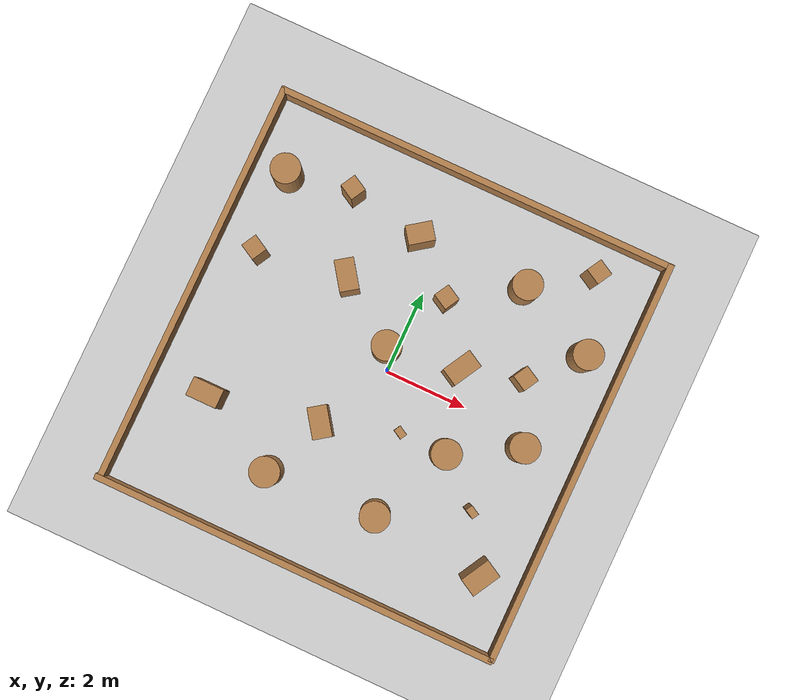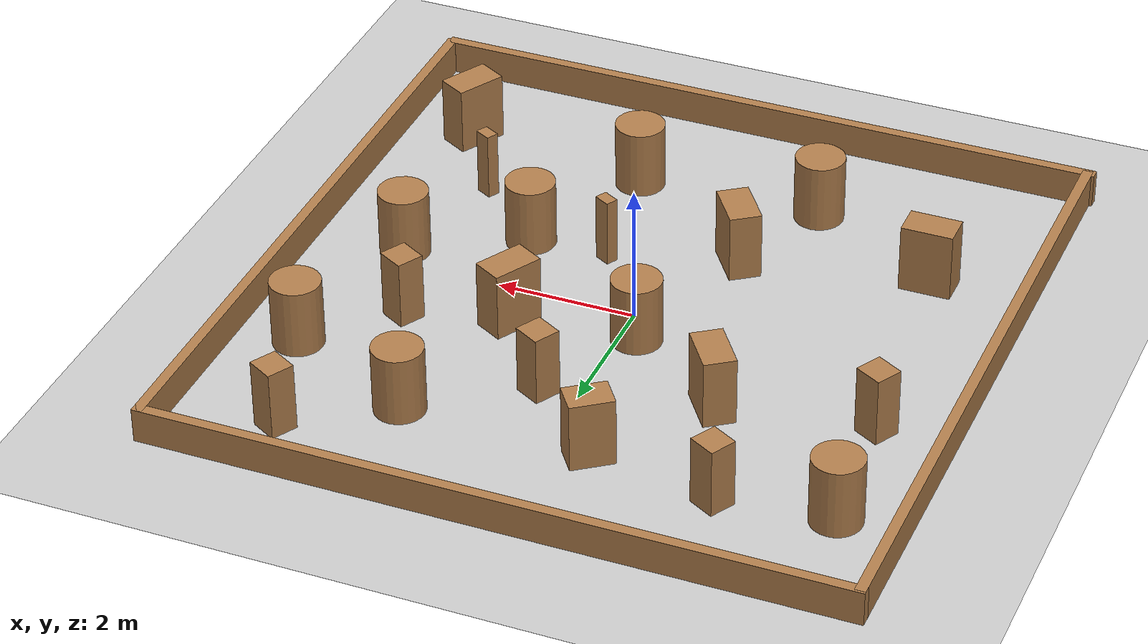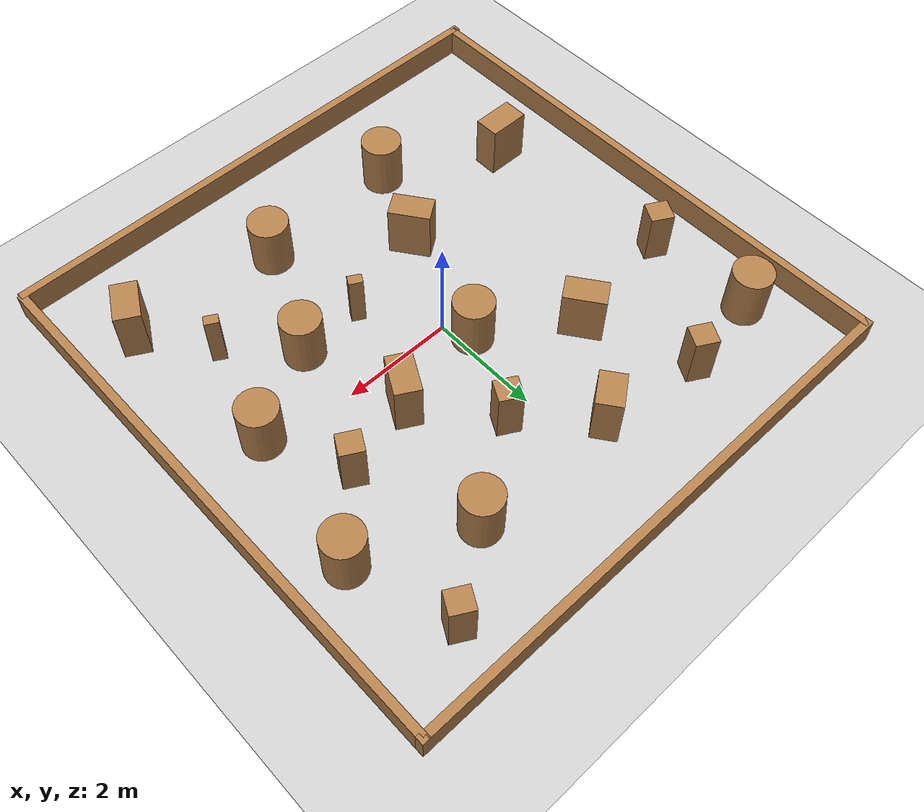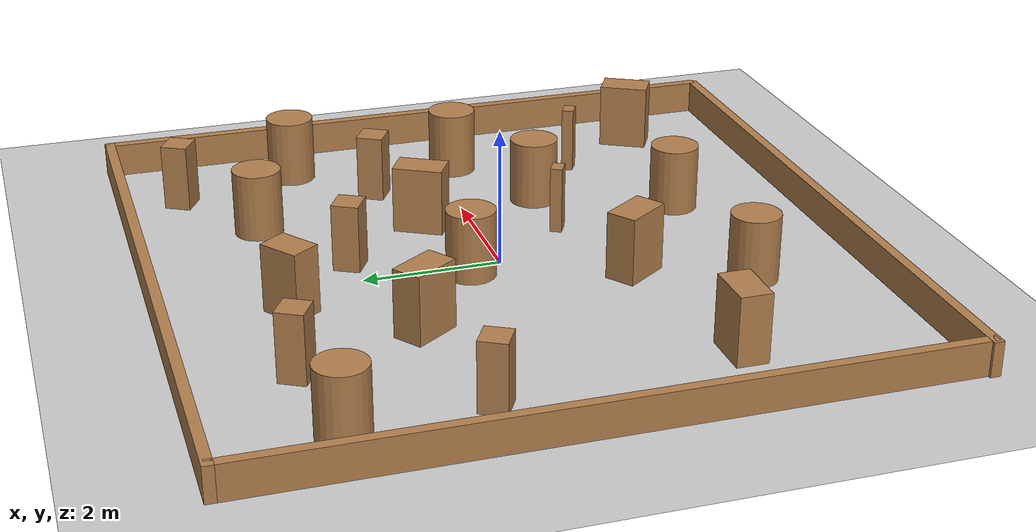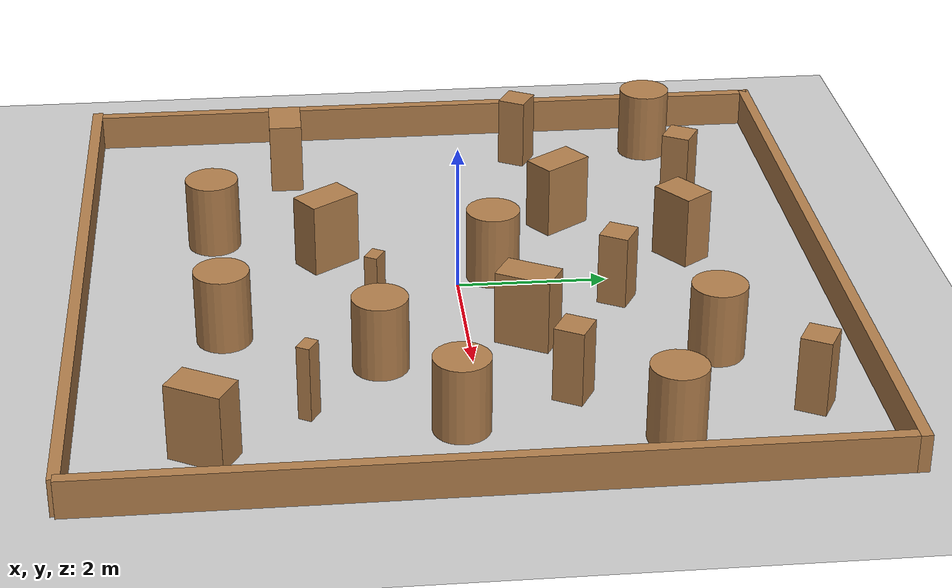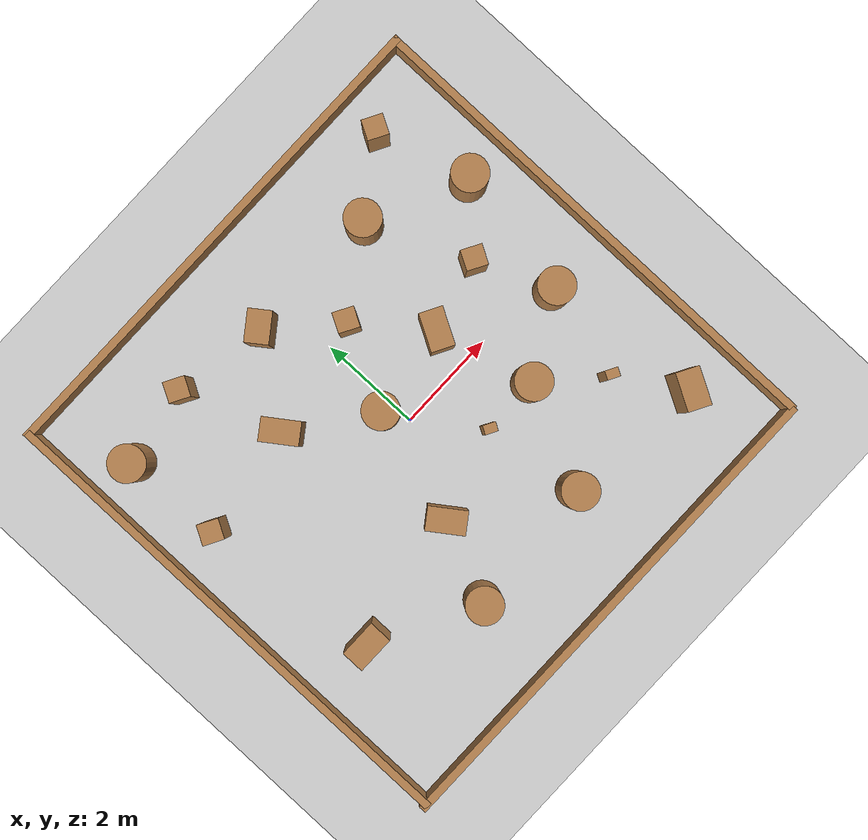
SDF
<sdf version="1.7">
 <world name="default">
  <light name="sun" type="directional">
   <pose>0 0 10 0 -0 0</pose>
   <diffuse>0.8 0.8 0.8 1</diffuse>
   <specular>0.2 0.2 0.2 1</specular>
   <attenuation>
    <range>1000</range>
    <constant>0.9</constant>
    <linear>0.01</linear>
    <quadratic>0.001</quadratic>
   </attenuation>
   <direction>-0.5 0.1 -0.9</direction>
   <spot><inner_angle>0</inner_angle><outer_angle>0</outer_angle><falloff>0</falloff></spot>
  </light>
  <model name="ground_plane">
   <static>1</static>
   <link name="link">
    <collision name="collision">
     <geometry><plane><normal>0 0 1</normal><size>100 100</size></plane></geometry>
     <surface><friction><ode><mu>100</mu><mu2>50</mu2></ode></friction></surface>
    </collision>
    <visual name="visual">
     <cast_shadows>0</cast_shadows>
     <geometry><plane><normal>0 0 1</normal><size>100 100</size></plane></geometry>
     <material>
      <script><uri>file://media/materials/scripts/gazebo.material</uri><name>Gazebo/Grey</name></script>
     </material>
    </visual>
   </link>
  </model>
  <physics type="ode">
   <real_time_update_rate>1000</real_time_update_rate>
   <max_step_size>0.001</max_step_size>
   <real_time_factor>1</real_time_factor>
   <ode>
    <solver>
     <type>quick</type>
     <iters>150</iters>
     <precon_iters>0</precon_iters>
     <sor>1.4</sor>
     <use_dynamic_moi_rescaling>1</use_dynamic_moi_rescaling>
    </solver>
    <constraints>
     <cfm>1e-05</cfm>
     <erp>0.2</erp>
     <contact_max_correcting_vel>2000</contact_max_correcting_vel>
     <contact_surface_layer>0.01</contact_surface_layer>
    </constraints>
   </ode>
  </physics>
  <scene><ambient>0.4 0.4 0.4 1</ambient><background>0.7 0.7 0.7 1</background><shadows>1</shadows></scene>
  <gravity>0 0 -9.8</gravity>
  <magnetic_field>6e-06 2.3e-05 -4.2e-05</magnetic_field>
  <atmosphere type="adiabatic"/>
  <spherical_coordinates>
   <surface_model>EARTH_WGS84</surface_model>
   <latitude_deg>0</latitude_deg>
   <longitude_deg>0</longitude_deg>
   <elevation>0</elevation>
   <heading_deg>0</heading_deg>
  </spherical_coordinates>
  <model name="turtlebot3_square_adapted">
   <link name="Wall_0">
    <pose>0 4.99549 0 0 -0 0</pose>
    <inertial>
     <mass>1</mass>
     <inertia><ixx>1</ixx><ixy>0</ixy><ixz>0</ixz><iyy>1</iyy><iyz>0</iyz><izz>1</izz></inertia>
    </inertial>
    <visual name="Wall_0_Visual">
     <pose>0 0 0.25 0 -0 0</pose>
     <geometry><box><size>10 0.15 0.5</size></box></geometry>
     <material>
      <script><uri>file://media/materials/scripts/gazebo.material</uri><name>Gazebo/Wood</name></script>
      <ambient>1 1 1 1</ambient>
      <shader type="pixel"><normal_map>__default__</normal_map></shader>
      <diffuse>1 1 1 1</diffuse>
      <specular>0.2 0.2 0.2 1</specular>
      <emissive>0 0 0 1</emissive>
     </material>
    </visual>
    <collision name="Wall_0_Collision">
     <pose>0 0 0.25 0 -0 0</pose>
     <geometry><box><size>10 0.15 0.5</size></box></geometry>
     <surface>
      <friction>
       <ode><mu>1</mu><mu2>1</mu2><fdir1>0 0 0</fdir1><slip1>0</slip1><slip2>0</slip2></ode>
       <torsional>
        <coefficient>1</coefficient>
        <patch_radius>0</patch_radius>
        <surface_radius>0</surface_radius>
        <use_patch_radius>1</use_patch_radius>
        <ode><slip>0</slip></ode>
       </torsional>
      </friction>
      <bounce><restitution_coefficient>0</restitution_coefficient><threshold>1e+06</threshold></bounce>
      <contact>
       <collide_without_contact>0</collide_without_contact>
       <collide_without_contact_bitmask>1</collide_without_contact_bitmask>
       <collide_bitmask>1</collide_bitmask>
       <ode>
        <soft_cfm>0</soft_cfm>
        <soft_erp>0.2</soft_erp>
        <kp>1e+13</kp>
        <kd>1</kd>
        <max_vel>0.01</max_vel>
        <min_depth>0</min_depth>
       </ode>
       <bullet>
        <split_impulse>1</split_impulse>
        <split_impulse_penetration_threshold>-0.01</split_impulse_penetration_threshold>
        <soft_cfm>0</soft_cfm>
        <soft_erp>0.2</soft_erp>
        <kp>1e+13</kp>
        <kd>1</kd>
       </bullet>
      </contact>
     </surface>
    </collision>
   </link>
   <link name="Wall_2">
    <pose>-1.92499 3.03741 0 0 0 -1.5708</pose>
    <inertial>
     <mass>1</mass>
     <inertia><ixx>1</ixx><ixy>0</ixy><ixz>0</ixz><iyy>1</iyy><iyz>0</iyz><izz>1</izz></inertia>
    </inertial>
    <visual name="Wall_2_Visual">
     <pose>3 -3 0.25 0 -0 0</pose>
     <geometry><box><size>10 0.15 0.5</size></box></geometry>
     <material>
      <script><uri>file://media/materials/scripts/gazebo.material</uri><name>Gazebo/Wood</name></script>
      <ambient>1 1 1 1</ambient>
      <shader type="pixel"><normal_map>__default__</normal_map></shader>
      <diffuse>1 1 1 1</diffuse>
      <specular>0.2 0.2 0.2 1</specular>
      <emissive>0 0 0 1</emissive>
     </material>
    </visual>
    <collision name="Wall_2_Collision">
     <pose>3 -3 0.25 0 -0 0</pose>
     <geometry><box><size>10 0.15 0.5</size></box></geometry>
     <surface>
      <friction>
       <ode><mu>1</mu><mu2>1</mu2><fdir1>0 0 0</fdir1><slip1>0</slip1><slip2>0</slip2></ode>
       <torsional>
        <coefficient>1</coefficient>
        <patch_radius>0</patch_radius>
        <surface_radius>0</surface_radius>
        <use_patch_radius>1</use_patch_radius>
        <ode><slip>0</slip></ode>
       </torsional>
      </friction>
      <bounce><restitution_coefficient>0</restitution_coefficient><threshold>1e+06</threshold></bounce>
      <contact>
       <collide_without_contact>0</collide_without_contact>
       <collide_without_contact_bitmask>1</collide_without_contact_bitmask>
       <collide_bitmask>1</collide_bitmask>
       <ode>
        <soft_cfm>0</soft_cfm>
        <soft_erp>0.2</soft_erp>
        <kp>1e+13</kp>
        <kd>1</kd>
        <max_vel>0.01</max_vel>
        <min_depth>0</min_depth>
       </ode>
       <bullet>
        <split_impulse>1</split_impulse>
        <split_impulse_penetration_threshold>-0.01</split_impulse_penetration_threshold>
        <soft_cfm>0</soft_cfm>
        <soft_erp>0.2</soft_erp>
        <kp>1e+13</kp>
        <kd>1</kd>
       </bullet>
      </contact>
     </surface>
    </collision>
   </link>
   <link name="Wall_3">
    <pose>-0.042941 1.08041 0 0 -0 0</pose>
    <inertial>
     <mass>1</mass>
     <inertia><ixx>1</ixx><ixy>0</ixy><ixz>0</ixz><iyy>1</iyy><iyz>0</iyz><izz>1</izz></inertia>
    </inertial>
    <visual name="Wall_3_Visual">
     <pose>0 -6 0.25 0 -0 0</pose>
     <geometry><box><size>10 0.15 0.5</size></box></geometry>
     <material>
      <script><uri>file://media/materials/scripts/gazebo.material</uri><name>Gazebo/Wood</name></script>
      <ambient>1 1 1 1</ambient>
      <shader type="pixel"><normal_map>__default__</normal_map></shader>
      <diffuse>1 1 1 1</diffuse>
      <specular>0.2 0.2 0.2 1</specular>
      <emissive>0 0 0 1</emissive>
     </material>
    </visual>
    <collision name="Wall_3_Collision">
     <pose>0 -6 0.25 0 -0 0</pose>
     <geometry><box><size>10 0.15 0.5</size></box></geometry>
     <surface>
      <friction>
       <ode><mu>1</mu><mu2>1</mu2><fdir1>0 0 0</fdir1><slip1>0</slip1><slip2>0</slip2></ode>
       <torsional>
        <coefficient>1</coefficient>
        <patch_radius>0</patch_radius>
        <surface_radius>0</surface_radius>
        <use_patch_radius>1</use_patch_radius>
        <ode><slip>0</slip></ode>
       </torsional>
      </friction>
      <bounce><restitution_coefficient>0</restitution_coefficient><threshold>1e+06</threshold></bounce>
      <contact>
       <collide_without_contact>0</collide_without_contact>
       <collide_without_contact_bitmask>1</collide_without_contact_bitmask>
       <collide_bitmask>1</collide_bitmask>
       <ode>
        <soft_cfm>0</soft_cfm>
        <soft_erp>0.2</soft_erp>
        <kp>1e+13</kp>
        <kd>1</kd>
        <max_vel>0.01</max_vel>
        <min_depth>0</min_depth>
       </ode>
       <bullet>
        <split_impulse>1</split_impulse>
        <split_impulse_penetration_threshold>-0.01</split_impulse_penetration_threshold>
        <soft_cfm>0</soft_cfm>
        <soft_erp>0.2</soft_erp>
        <kp>1e+13</kp>
        <kd>1</kd>
       </bullet>
      </contact>
     </surface>
    </collision>
   </link>
   <link name="Wall_4">
    <pose>1.92499 3.06276 0 0 -0 1.5708</pose>
    <inertial>
     <mass>1</mass>
     <inertia><ixx>1</ixx><ixy>0</ixy><ixz>0</ixz><iyy>1</iyy><iyz>0</iyz><izz>1</izz></inertia>
    </inertial>
    <visual name="Wall_4_Visual">
     <pose>-3 -3 0.25 0 -0 0</pose>
     <geometry><box><size>10 0.15 0.5</size></box></geometry>
     <material>
      <script><uri>file://media/materials/scripts/gazebo.material</uri><name>Gazebo/Wood</name></script>
      <ambient>1 1 1 1</ambient>
      <shader type="pixel"><normal_map>__default__</normal_map></shader>
      <diffuse>1 1 1 1</diffuse>
      <specular>0.2 0.2 0.2 1</specular>
      <emissive>0 0 0 1</emissive>
     </material>
    </visual>
    <collision name="Wall_4_Collision">
     <pose>-3 -3 0.25 0 -0 0</pose>
     <geometry><box><size>10 0.15 0.5</size></box></geometry>
     <surface>
      <friction>
       <ode><mu>1</mu><mu2>1</mu2><fdir1>0 0 0</fdir1><slip1>0</slip1><slip2>0</slip2></ode>
       <torsional>
        <coefficient>1</coefficient>
        <patch_radius>0</patch_radius>
        <surface_radius>0</surface_radius>
        <use_patch_radius>1</use_patch_radius>
        <ode><slip>0</slip></ode>
       </torsional>
      </friction>
      <bounce><restitution_coefficient>0</restitution_coefficient><threshold>1e+06</threshold></bounce>
      <contact>
       <collide_without_contact>0</collide_without_contact>
       <collide_without_contact_bitmask>1</collide_without_contact_bitmask>
       <collide_bitmask>1</collide_bitmask>
       <ode>
        <soft_cfm>0</soft_cfm>
        <soft_erp>0.2</soft_erp>
        <kp>1e+13</kp>
        <kd>1</kd>
        <max_vel>0.01</max_vel>
        <min_depth>0</min_depth>
       </ode>
       <bullet>
        <split_impulse>1</split_impulse>
        <split_impulse_penetration_threshold>-0.01</split_impulse_penetration_threshold>
        <soft_cfm>0</soft_cfm>
        <soft_erp>0.2</soft_erp>
        <kp>1e+13</kp>
        <kd>1</kd>
       </bullet>
      </contact>
     </surface>
    </collision>
   </link>
   <static>1</static>
   <pose>0 -0.07049 0 0 -0 0</pose>
  </model>
  <model name="obstacle_1">
   <pose>-3.49557 -2.19065 0.500346 0 -0 0</pose>
   <link name="link">
    <inertial>
     <mass>1</mass>
     <inertia>
      <ixx>0.166667</ixx>
      <ixy>0</ixy>
      <ixz>0</ixz>
      <iyy>0.166667</iyy>
      <iyz>0</iyz>
      <izz>0.166667</izz>
     </inertia>
    </inertial>
    <collision name="collision"><geometry><box><size>0.741786 0.456239 1.00069</size></box></geometry></collision>
    <visual name="visual">
     <geometry><box><size>0.741786 0.456239 1.00069</size></box></geometry>
     <material>
      <script><uri>file://media/materials/scripts/gazebo.material</uri><name>Gazebo/Wood</name></script>
      <ambient>1 1 1 1</ambient>
      <shader type="pixel"><normal_map>__default__</normal_map></shader>
      <diffuse>1 1 1 1</diffuse>
      <specular>0.2 0.2 0.2 1</specular>
      <emissive>0 0 0 1</emissive>
     </material>
    </visual>
   </link>
  </model>
  <model name="obstacle_14">
   <pose>-1.52068 -3.24058 0.499991 1e-06 1e-06 0</pose>
   <link name="link">
    <inertial>
     <mass>1</mass>
     <inertia><ixx>0.145833</ixx><ixy>0</ixy><ixz>0</ixz><iyy>0.145833</iyy><iyz>0</iyz><izz>0.125</izz></inertia>
    </inertial>
    <collision name="collision">
     <geometry><cylinder><radius>0.359423</radius><length>1</length></cylinder></geometry>
    </collision>
    <visual name="visual">
     <geometry><cylinder><radius>0.359423</radius><length>1</length></cylinder></geometry>
     <material>
      <script><uri>file://media/materials/scripts/gazebo.material</uri><name>Gazebo/Wood</name></script>
      <ambient>1 1 1 1</ambient>
      <shader type="pixel"><normal_map>__default__</normal_map></shader>
      <diffuse>1 1 1 1</diffuse>
      <specular>0.2 0.2 0.2 1</specular>
      <emissive>0 0 0 1</emissive>
     </material>
    </visual>
   </link>
  </model>
  <model name="obstacle_2">
   <pose>-0.872264 -1.70907 0.5 0 0 -0.954368</pose>
   <link name="link">
    <inertial>
     <mass>1</mass>
     <inertia>
      <ixx>0.166667</ixx>
      <ixy>0</ixy>
      <ixz>0</ixz>
      <iyy>0.166667</iyy>
      <iyz>0</iyz>
      <izz>0.166667</izz>
     </inertia>
    </inertial>
    <collision name="collision"><geometry><box><size>0.741786 0.456239 1</size></box></geometry></collision>
    <visual name="visual">
     <geometry><box><size>0.741786 0.456239 1</size></box></geometry>
     <material>
      <script><uri>file://media/materials/scripts/gazebo.material</uri><name>Gazebo/Wood</name></script>
      <ambient>1 1 1 1</ambient>
      <shader type="pixel"><normal_map>__default__</normal_map></shader>
      <diffuse>1 1 1 1</diffuse>
      <specular>0.2 0.2 0.2 1</specular>
      <emissive>0 0 0 1</emissive>
     </material>
    </visual>
   </link>
  </model>
  <model name="obstacle_15">
   <pose>1.14683 -3.11033 0.499999 -1e-06 -1e-06 0</pose>
   <link name="link">
    <inertial>
     <mass>1</mass>
     <inertia><ixx>0.145833</ixx><ixy>0</ixy><ixz>0</ixz><iyy>0.145833</iyy><iyz>0</iyz><izz>0.125</izz></inertia>
    </inertial>
    <collision name="collision">
     <geometry><cylinder><radius>0.359423</radius><length>1</length></cylinder></geometry>
    </collision>
    <visual name="visual">
     <geometry><cylinder><radius>0.359423</radius><length>1</length></cylinder></geometry>
     <material>
      <script><uri>file://media/materials/scripts/gazebo.material</uri><name>Gazebo/Wood</name></script>
      <ambient>1 1 1 1</ambient>
      <shader type="pixel"><normal_map>__default__</normal_map></shader>
      <diffuse>1 1 1 1</diffuse>
      <specular>0.2 0.2 0.2 1</specular>
      <emissive>0 0 0 1</emissive>
     </material>
    </visual>
   </link>
  </model>
  <model name="obstacle_15">
   <pose>1.14683 -3.11033 0.499999 -1e-06 -1e-06 0</pose>
   <link name="link">
    <inertial>
     <mass>1</mass>
     <inertia><ixx>0.145833</ixx><ixy>0</ixy><ixz>0</ixz><iyy>0.145833</iyy><iyz>0</iyz><izz>0.125</izz></inertia>
    </inertial>
    <collision name="collision">
     <geometry><cylinder><radius>0.359423</radius><length>1</length></cylinder></geometry>
    </collision>
    <visual name="visual">
     <geometry><cylinder><radius>0.359423</radius><length>1</length></cylinder></geometry>
     <material>
      <script><uri>file://media/materials/scripts/gazebo.material</uri><name>Gazebo/Wood</name></script>
      <ambient>1 1 1 1</ambient>
      <shader type="pixel"><normal_map>__default__</normal_map></shader>
      <diffuse>1 1 1 1</diffuse>
      <specular>0.2 0.2 0.2 1</specular>
      <emissive>0 0 0 1</emissive>
     </material>
    </visual>
   </link>
  </model>
  <model name="obstacle_16">
   <pose>-0.234231 0.494683 0.499991 1e-06 1e-06 0</pose>
   <link name="link">
    <inertial>
     <mass>1</mass>
     <inertia><ixx>0.145833</ixx><ixy>0</ixy><ixz>0</ixz><iyy>0.145833</iyy><iyz>0</iyz><izz>0.125</izz></inertia>
    </inertial>
    <collision name="collision">
     <geometry><cylinder><radius>0.359423</radius><length>1</length></cylinder></geometry>
    </collision>
    <visual name="visual">
     <geometry><cylinder><radius>0.359423</radius><length>1</length></cylinder></geometry>
     <material>
      <script><uri>file://media/materials/scripts/gazebo.material</uri><name>Gazebo/Wood</name></script>
      <ambient>1 1 1 1</ambient>
      <shader type="pixel"><normal_map>__default__</normal_map></shader>
      <diffuse>1 1 1 1</diffuse>
      <specular>0.2 0.2 0.2 1</specular>
      <emissive>0 0 0 1</emissive>
     </material>
    </visual>
   </link>
  </model>
  <model name="obstacle_17">
   <pose>2.01828 -1.16185 0.499991 1e-06 1e-06 0</pose>
   <link name="link">
    <inertial>
     <mass>1</mass>
     <inertia><ixx>0.145833</ixx><ixy>0</ixy><ixz>0</ixz><iyy>0.145833</iyy><iyz>0</iyz><izz>0.125</izz></inertia>
    </inertial>
    <collision name="collision">
     <geometry><cylinder><radius>0.359423</radius><length>1</length></cylinder></geometry>
    </collision>
    <visual name="visual">
     <geometry><cylinder><radius>0.359423</radius><length>1</length></cylinder></geometry>
     <material>
      <script><uri>file://media/materials/scripts/gazebo.material</uri><name>Gazebo/Wood</name></script>
      <ambient>1 1 1 1</ambient>
      <shader type="pixel"><normal_map>__default__</normal_map></shader>
      <diffuse>1 1 1 1</diffuse>
      <specular>0.2 0.2 0.2 1</specular>
      <emissive>0 0 0 1</emissive>
     </material>
    </visual>
   </link>
  </model>
  <model name="obstacle_3">
   <pose>1.52263 0.751405 0.5 0 -0 -2.07879</pose>
   <link name="link">
    <inertial>
     <mass>1</mass>
     <inertia>
      <ixx>0.166667</ixx>
      <ixy>0</ixy>
      <ixz>0</ixz>
      <iyy>0.166667</iyy>
      <iyz>0</iyz>
      <izz>0.166667</izz>
     </inertia>
    </inertial>
    <collision name="collision"><geometry><box><size>0.741786 0.456239 1</size></box></geometry></collision>
    <visual name="visual">
     <geometry><box><size>0.741786 0.456239 1</size></box></geometry>
     <material>
      <script><uri>file://media/materials/scripts/gazebo.material</uri><name>Gazebo/Wood</name></script>
      <ambient>1 1 1 1</ambient>
      <shader type="pixel"><normal_map>__default__</normal_map></shader>
      <diffuse>1 1 1 1</diffuse>
      <specular>0.2 0.2 0.2 1</specular>
      <emissive>0 0 0 1</emissive>
     </material>
    </visual>
   </link>
  </model>
  <model name="obstacle_4">
   <pose>-1.73212 1.56833 0.5 0 0 -0.954368</pose>
   <link name="link">
    <inertial>
     <mass>1</mass>
     <inertia>
      <ixx>0.166667</ixx>
      <ixy>0</ixy>
      <ixz>0</ixz>
      <iyy>0.166667</iyy>
      <iyz>0</iyz>
      <izz>0.166667</izz>
     </inertia>
    </inertial>
    <collision name="collision"><geometry><box><size>0.741786 0.456239 1</size></box></geometry></collision>
    <visual name="visual">
     <geometry><box><size>0.741786 0.456239 1</size></box></geometry>
     <material>
      <script><uri>file://media/materials/scripts/gazebo.material</uri><name>Gazebo/Wood</name></script>
      <ambient>1 1 1 1</ambient>
      <shader type="pixel"><normal_map>__default__</normal_map></shader>
      <diffuse>1 1 1 1</diffuse>
      <specular>0.2 0.2 0.2 1</specular>
      <emissive>0 0 0 1</emissive>
     </material>
    </visual>
   </link>
  </model>
  <model name="obstacle_5">
   <pose>3.86325 -3.34396 0.5 -0 -0 -2.07879</pose>
   <link name="link">
    <inertial>
     <mass>1</mass>
     <inertia>
      <ixx>0.166667</ixx>
      <ixy>0</ixy>
      <ixz>0</ixz>
      <iyy>0.166667</iyy>
      <iyz>0</iyz>
      <izz>0.166667</izz>
     </inertia>
    </inertial>
    <collision name="collision"><geometry><box><size>0.741786 0.456239 1</size></box></geometry></collision>
    <visual name="visual">
     <geometry><box><size>0.741786 0.456239 1</size></box></geometry>
     <material>
      <script><uri>file://media/materials/scripts/gazebo.material</uri><name>Gazebo/Wood</name></script>
      <ambient>1 1 1 1</ambient>
      <shader type="pixel"><normal_map>__default__</normal_map></shader>
      <diffuse>1 1 1 1</diffuse>
      <specular>0.2 0.2 0.2 1</specular>
      <emissive>0 0 0 1</emissive>
     </material>
    </visual>
   </link>
  </model>
  <model name="obstacle_6">
   <pose>-0.618621 3.1318 0.5 0 -0 -2.51047</pose>
   <link name="link">
    <inertial>
     <mass>1</mass>
     <inertia>
      <ixx>0.166667</ixx>
      <ixy>0</ixy>
      <ixz>0</ixz>
      <iyy>0.166667</iyy>
      <iyz>0</iyz>
      <izz>0.166667</izz>
     </inertia>
    </inertial>
    <collision name="collision"><geometry><box><size>0.623304 0.456239 1</size></box></geometry></collision>
    <visual name="visual">
     <geometry><box><size>0.623304 0.456239 1</size></box></geometry>
     <material>
      <script><uri>file://media/materials/scripts/gazebo.material</uri><name>Gazebo/Wood</name></script>
      <ambient>1 1 1 1</ambient>
      <shader type="pixel"><normal_map>__default__</normal_map></shader>
      <diffuse>1 1 1 1</diffuse>
      <specular>0.2 0.2 0.2 1</specular>
      <emissive>0 0 0 1</emissive>
     </material>
    </visual>
   </link>
  </model>
  <model name="obstacle_18">
   <pose>3.55852 -0.293249 0.499992 1e-06 1e-06 0</pose>
   <link name="link">
    <inertial>
     <mass>1</mass>
     <inertia><ixx>0.145833</ixx><ixy>0</ixy><ixz>0</ixz><iyy>0.145833</iyy><iyz>0</iyz><izz>0.125</izz></inertia>
    </inertial>
    <collision name="collision">
     <geometry><cylinder><radius>0.359423</radius><length>1</length></cylinder></geometry>
    </collision>
    <visual name="visual">
     <geometry><cylinder><radius>0.359423</radius><length>1</length></cylinder></geometry>
     <material>
      <script><uri>file://media/materials/scripts/gazebo.material</uri><name>Gazebo/Wood</name></script>
      <ambient>1 1 1 1</ambient>
      <shader type="pixel"><normal_map>__default__</normal_map></shader>
      <diffuse>1 1 1 1</diffuse>
      <specular>0.2 0.2 0.2 1</specular>
      <emissive>0 0 0 1</emissive>
     </material>
    </visual>
   </link>
  </model>
  <model name="obstacle_19">
   <pose>2.0825 3.08457 0.499999 -1e-06 -1e-06 0</pose>
   <link name="link">
    <inertial>
     <mass>1</mass>
     <inertia><ixx>0.145833</ixx><ixy>0</ixy><ixz>0</ixz><iyy>0.145833</iyy><iyz>0</iyz><izz>0.125</izz></inertia>
    </inertial>
    <collision name="collision">
     <geometry><cylinder><radius>0.359423</radius><length>1</length></cylinder></geometry>
    </collision>
    <visual name="visual">
     <geometry><cylinder><radius>0.359423</radius><length>1</length></cylinder></geometry>
     <material>
      <script><uri>file://media/materials/scripts/gazebo.material</uri><name>Gazebo/Wood</name></script>
      <ambient>1 1 1 1</ambient>
      <shader type="pixel"><normal_map>__default__</normal_map></shader>
      <diffuse>1 1 1 1</diffuse>
      <specular>0.2 0.2 0.2 1</specular>
      <emissive>0 0 0 1</emissive>
     </material>
    </visual>
   </link>
  </model>
  <model name="obstacle_20">
   <pose>3.98224 2.21971 0.499999 -1e-06 -1e-06 0</pose>
   <link name="link">
    <inertial>
     <mass>1</mass>
     <inertia><ixx>0.145833</ixx><ixy>0</ixy><ixz>0</ixz><iyy>0.145833</iyy><iyz>0</iyz><izz>0.125</izz></inertia>
    </inertial>
    <collision name="collision">
     <geometry><cylinder><radius>0.359423</radius><length>1</length></cylinder></geometry>
    </collision>
    <visual name="visual">
     <geometry><cylinder><radius>0.359423</radius><length>1</length></cylinder></geometry>
     <material>
      <script><uri>file://media/materials/scripts/gazebo.material</uri><name>Gazebo/Wood</name></script>
      <ambient>1 1 1 1</ambient>
      <shader type="pixel"><normal_map>__default__</normal_map></shader>
      <diffuse>1 1 1 1</diffuse>
      <specular>0.2 0.2 0.2 1</specular>
      <emissive>0 0 0 1</emissive>
     </material>
    </visual>
   </link>
  </model>
  <model name="obstacle_7">
   <pose>2.92298 1.13659 0.5 -0 -0 -2.07879</pose>
   <link name="link">
    <inertial>
     <mass>1</mass>
     <inertia>
      <ixx>0.166667</ixx>
      <ixy>0</ixy>
      <ixz>0</ixz>
      <iyy>0.166667</iyy>
      <iyz>0</iyz>
      <izz>0.166667</izz>
     </inertia>
    </inertial>
    <collision name="collision"><geometry><box><size>0.39533 0.413102 1</size></box></geometry></collision>
    <visual name="visual">
     <geometry><box><size>0.39533 0.413102 1</size></box></geometry>
     <material>
      <script><uri>file://media/materials/scripts/gazebo.material</uri><name>Gazebo/Wood</name></script>
      <ambient>1 1 1 1</ambient>
      <shader type="pixel"><normal_map>__default__</normal_map></shader>
      <diffuse>1 1 1 1</diffuse>
      <specular>0.2 0.2 0.2 1</specular>
      <emissive>0 0 0 1</emissive>
     </material>
    </visual>
   </link>
  </model>
  <model name="obstacle_8">
   <pose>0.538262 2.05949 0.5 0 -0 -2.07879</pose>
   <link name="link">
    <inertial>
     <mass>1</mass>
     <inertia>
      <ixx>0.166667</ixx>
      <ixy>0</ixy>
      <ixz>0</ixz>
      <iyy>0.166667</iyy>
      <iyz>0</iyz>
      <izz>0.166667</izz>
     </inertia>
    </inertial>
    <collision name="collision"><geometry><box><size>0.39533 0.413102 1</size></box></geometry></collision>
    <visual name="visual">
     <geometry><box><size>0.39533 0.413102 1</size></box></geometry>
     <material>
      <script><uri>file://media/materials/scripts/gazebo.material</uri><name>Gazebo/Wood</name></script>
      <ambient>1 1 1 1</ambient>
      <shader type="pixel"><normal_map>__default__</normal_map></shader>
      <diffuse>1 1 1 1</diffuse>
      <specular>0.2 0.2 0.2 1</specular>
      <emissive>0 0 0 1</emissive>
     </material>
    </visual>
   </link>
  </model>
  <model name="obstacle_9">
   <pose>3.42745 4.03087 0.5 0 -0 -2.07879</pose>
   <link name="link">
    <inertial>
     <mass>1</mass>
     <inertia>
      <ixx>0.166667</ixx>
      <ixy>0</ixy>
      <ixz>0</ixz>
      <iyy>0.166667</iyy>
      <iyz>0</iyz>
      <izz>0.166667</izz>
     </inertia>
    </inertial>
    <collision name="collision"><geometry><box><size>0.39533 0.413102 1</size></box></geometry></collision>
    <visual name="visual">
     <geometry><box><size>0.39533 0.413102 1</size></box></geometry>
     <material>
      <script><uri>file://media/materials/scripts/gazebo.material</uri><name>Gazebo/Wood</name></script>
      <ambient>1 1 1 1</ambient>
      <shader type="pixel"><normal_map>__default__</normal_map></shader>
      <diffuse>1 1 1 1</diffuse>
      <specular>0.2 0.2 0.2 1</specular>
      <emissive>0 0 0 1</emissive>
     </material>
    </visual>
   </link>
  </model>
  <model name="obstacle_10">
   <pose>-2.43691 3.43095 0.5 0 -0 -2.07879</pose>
   <link name="link">
    <inertial>
     <mass>1</mass>
     <inertia>
      <ixx>0.166667</ixx>
      <ixy>0</ixy>
      <ixz>0</ixz>
      <iyy>0.166667</iyy>
      <iyz>0</iyz>
      <izz>0.166667</izz>
     </inertia>
    </inertial>
    <collision name="collision"><geometry><box><size>0.39533 0.413102 1</size></box></geometry></collision>
    <visual name="visual">
     <geometry><box><size>0.39533 0.413102 1</size></box></geometry>
     <material>
      <script><uri>file://media/materials/scripts/gazebo.material</uri><name>Gazebo/Wood</name></script>
      <ambient>1 1 1 1</ambient>
      <shader type="pixel"><normal_map>__default__</normal_map></shader>
      <diffuse>1 1 1 1</diffuse>
      <specular>0.2 0.2 0.2 1</specular>
      <emissive>0 0 0 1</emissive>
     </material>
    </visual>
   </link>
  </model>
  <model name="obstacle_11">
   <pose>-3.8936 1.24886 0.5 0 -0 -2.07879</pose>
   <link name="link">
    <inertial>
     <mass>1</mass>
     <inertia>
      <ixx>0.166667</ixx>
      <ixy>0</ixy>
      <ixz>0</ixz>
      <iyy>0.166667</iyy>
      <iyz>0</iyz>
      <izz>0.166667</izz>
     </inertia>
    </inertial>
    <collision name="collision"><geometry><box><size>0.39533 0.413102 1</size></box></geometry></collision>
    <visual name="visual">
     <geometry><box><size>0.39533 0.413102 1</size></box></geometry>
     <material>
      <script><uri>file://media/materials/scripts/gazebo.material</uri><name>Gazebo/Wood</name></script>
      <ambient>1 1 1 1</ambient>
      <shader type="pixel"><normal_map>__default__</normal_map></shader>
      <diffuse>1 1 1 1</diffuse>
      <specular>0.2 0.2 0.2 1</specular>
      <emissive>0 0 0 1</emissive>
     </material>
    </visual>
   </link>
  </model>
  <model name="obstacle_21">
   <pose>-4.01574 3.18261 0.499991 1e-06 1e-06 0</pose>
   <link name="link">
    <inertial>
     <mass>1</mass>
     <inertia><ixx>0.145833</ixx><ixy>0</ixy><ixz>0</ixz><iyy>0.145833</iyy><iyz>0</iyz><izz>0.125</izz></inertia>
    </inertial>
    <collision name="collision">
     <geometry><cylinder><radius>0.359423</radius><length>1</length></cylinder></geometry>
    </collision>
    <visual name="visual">
     <geometry><cylinder><radius>0.359423</radius><length>1</length></cylinder></geometry>
     <material>
      <script><uri>file://media/materials/scripts/gazebo.material</uri><name>Gazebo/Wood</name></script>
      <ambient>1 1 1 1</ambient>
      <shader type="pixel"><normal_map>__default__</normal_map></shader>
      <diffuse>1 1 1 1</diffuse>
      <specular>0.2 0.2 0.2 1</specular>
      <emissive>0 0 0 1</emissive>
     </material>
    </visual>
   </link>
  </model>
  <model name="obstacle_12">
   <pose>3.07938 -2.09277 0.5 -1e-06 2e-06 -2.0788</pose>
   <link name="link">
    <inertial>
     <mass>1</mass>
     <inertia>
      <ixx>0.166667</ixx>
      <ixy>0</ixy>
      <ixz>0</ixz>
      <iyy>0.166667</iyy>
      <iyz>0</iyz>
      <izz>0.166667</izz>
     </inertia>
    </inertial>
    <collision name="collision"><geometry><box><size>0.178254 0.249453 1</size></box></geometry></collision>
    <visual name="visual">
     <geometry><box><size>0.178254 0.249453 1</size></box></geometry>
     <material>
      <script><uri>file://media/materials/scripts/gazebo.material</uri><name>Gazebo/Wood</name></script>
      <ambient>1 1 1 1</ambient>
      <shader type="pixel"><normal_map>__default__</normal_map></shader>
      <diffuse>1 1 1 1</diffuse>
      <specular>0.2 0.2 0.2 1</specular>
      <emissive>0 0 0 1</emissive>
     </material>
    </visual>
   </link>
  </model>
  <model name="obstacle_13">
   <pose>0.872523 -1.15553 0.5 -2e-06 -1e-06 -2.07879</pose>
   <link name="link">
    <inertial>
     <mass>1</mass>
     <inertia>
      <ixx>0.166667</ixx>
      <ixy>0</ixy>
      <ixz>0</ixz>
      <iyy>0.166667</iyy>
      <iyz>0</iyz>
      <izz>0.166667</izz>
     </inertia>
    </inertial>
    <collision name="collision"><geometry><box><size>0.178254 0.249453 1</size></box></geometry></collision>
    <visual name="visual">
     <geometry><box><size>0.178254 0.249453 1</size></box></geometry>
     <material>
      <script><uri>file://media/materials/scripts/gazebo.material</uri><name>Gazebo/Wood</name></script>
      <ambient>1 1 1 1</ambient>
      <shader type="pixel"><normal_map>__default__</normal_map></shader>
      <diffuse>1 1 1 1</diffuse>
      <specular>0.2 0.2 0.2 1</specular>
      <emissive>0 0 0 1</emissive>
     </material>
    </visual>
   </link>
  </model>
 </world>
</sdf>
